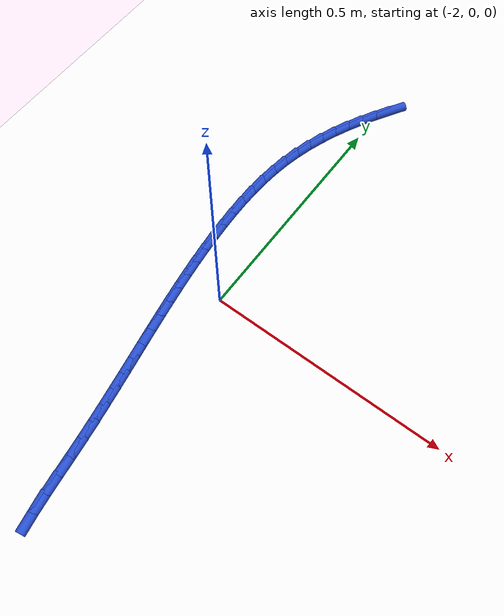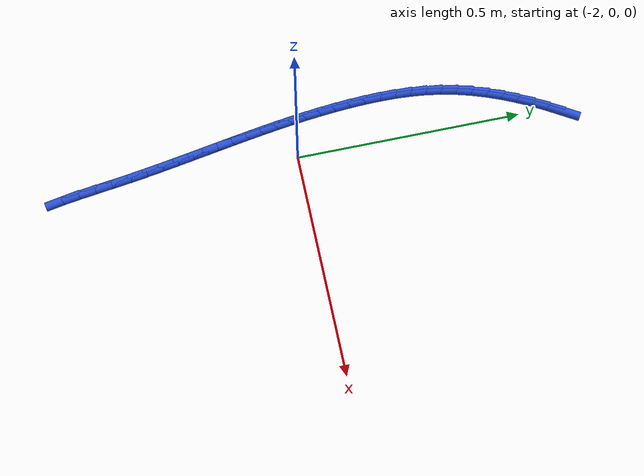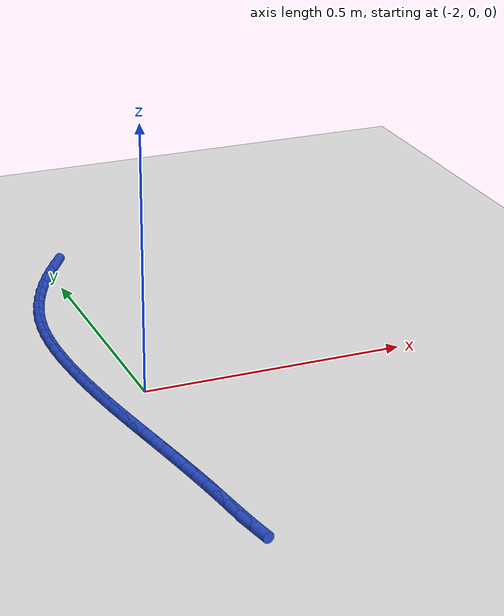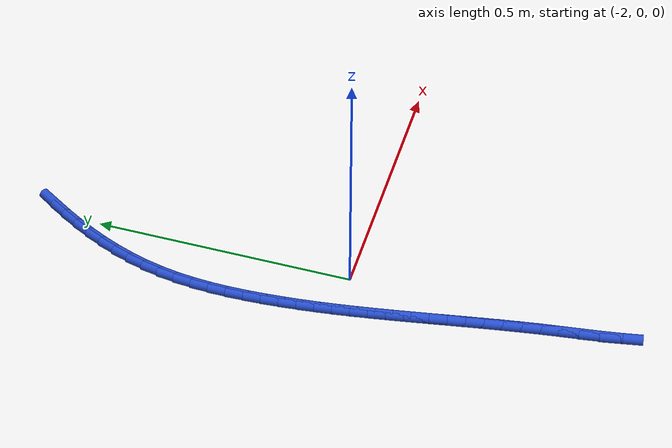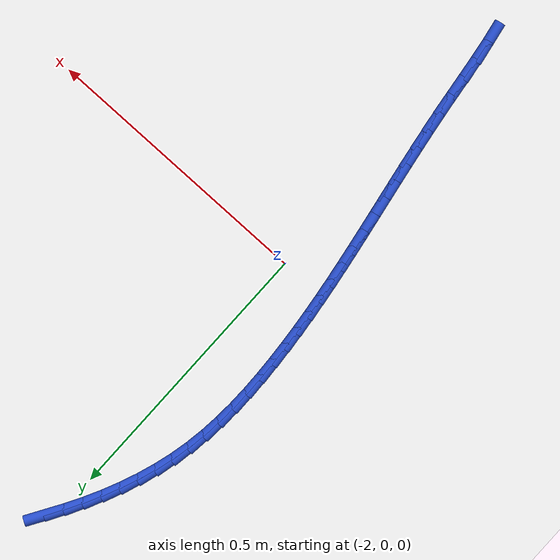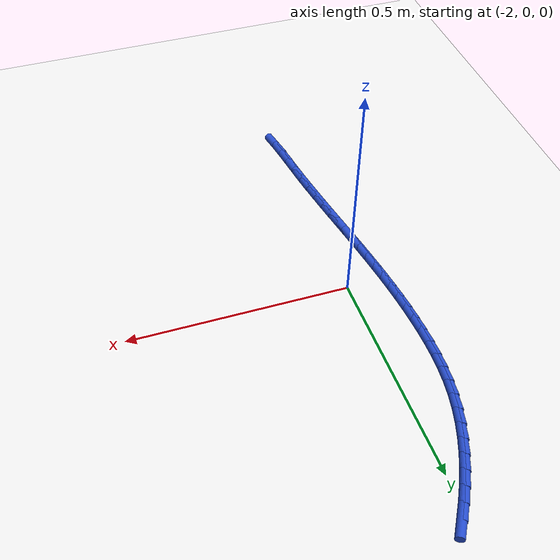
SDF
<sdf version="1.6">
 <world name="default">
  <model name="ground_plane">
   <static>1</static>
   <link name="link">
    <collision name="collision">
     <geometry><plane><normal>0 0 1</normal><size>100 100</size></plane></geometry>
     <surface><friction><ode><mu>100</mu><mu2>50</mu2></ode></friction></surface>
    </collision>
    <visual name="visual">
     <cast_shadows>0</cast_shadows>
     <geometry><plane><normal>0 0 1</normal><size>100 100</size></plane></geometry>
     <material>
      <script><uri>file://media/materials/scripts/gazebo.material</uri><name>Gazebo/WhiteGlow</name></script>
     </material>
    </visual>
   </link>
  </model>
  <model name="line">
   <link name="link_83">
    <pose>-1.983853135962166 0.5947772498989344 0.01 0 1.57 1.0234934321866094</pose>
    <collision name="collision">
     <geometry><cylinder><radius>0.01</radius><length>0.08</length></cylinder></geometry>
    </collision>
    <visual name="visual">
     <material>
      <script><name>Gazebo/Blue</name><uri>file://media/materials/scripts/gazebo.material</uri></script>
     </material>
     <geometry><cylinder><radius>0.01</radius><length>0.08</length></cylinder></geometry>
    </visual>
   </link>
   <link name="link_84">
    <pose>-2.0019983518716864 0.5650017258830304 0.01 0 1.57 1.0599484746433958</pose>
    <collision name="collision">
     <geometry><cylinder><radius>0.01</radius><length>0.08</length></cylinder></geometry>
    </collision>
    <visual name="visual">
     <material>
      <script><name>Gazebo/Blue</name><uri>file://media/materials/scripts/gazebo.material</uri></script>
     </material>
     <geometry><cylinder><radius>0.01</radius><length>0.08</length></cylinder></geometry>
    </visual>
   </link>
   <link name="link_85">
    <pose>-2.0189564164764886 0.5347449899756505 0.01 0 1.57 1.0997635262144745</pose>
    <collision name="collision">
     <geometry><cylinder><radius>0.01</radius><length>0.08</length></cylinder></geometry>
    </collision>
    <visual name="visual">
     <material>
      <script><name>Gazebo/Blue</name><uri>file://media/materials/scripts/gazebo.material</uri></script>
     </material>
     <geometry><cylinder><radius>0.01</radius><length>0.08</length></cylinder></geometry>
    </visual>
   </link>
   <link name="link_86">
    <pose>-2.0346126172049326 0.5040023041669577 0.01 0 1.57 1.1430380776419955</pose>
    <collision name="collision">
     <geometry><cylinder><radius>0.01</radius><length>0.08</length></cylinder></geometry>
    </collision>
    <visual name="visual">
     <material>
      <script><name>Gazebo/Blue</name><uri>file://media/materials/scripts/gazebo.material</uri></script>
     </material>
     <geometry><cylinder><radius>0.01</radius><length>0.08</length></cylinder></geometry>
    </visual>
   </link>
   <link name="link_87">
    <pose>-2.048852241485381 0.472768930447115 0.01 0 1.57 1.189833159988461</pose>
    <collision name="collision">
     <geometry><cylinder><radius>0.01</radius><length>0.08</length></cylinder></geometry>
    </collision>
    <visual name="visual">
     <material>
      <script><name>Gazebo/Blue</name><uri>file://media/materials/scripts/gazebo.material</uri></script>
     </material>
     <geometry><cylinder><radius>0.01</radius><length>0.08</length></cylinder></geometry>
    </visual>
   </link>
   <link name="link_88">
    <pose>-2.0615605767461944 0.4410401308062845 0.01 0 1.57 1.2401546439718218</pose>
    <collision name="collision">
     <geometry><cylinder><radius>0.01</radius><length>0.08</length></cylinder></geometry>
    </collision>
    <visual name="visual">
     <material>
      <script><name>Gazebo/Blue</name><uri>file://media/materials/scripts/gazebo.material</uri></script>
     </material>
     <geometry><cylinder><radius>0.01</radius><length>0.08</length></cylinder></geometry>
    </visual>
   </link>
   <link name="link_89">
    <pose>-2.0726229104157334 0.4088111672346294 0.01 0 1.57 1.293935247769886</pose>
    <collision name="collision">
     <geometry><cylinder><radius>0.01</radius><length>0.08</length></cylinder></geometry>
    </collision>
    <visual name="visual">
     <material>
      <script><name>Gazebo/Blue</name><uri>file://media/materials/scripts/gazebo.material</uri></script>
     </material>
     <geometry><cylinder><radius>0.01</radius><length>0.08</length></cylinder></geometry>
    </visual>
   </link>
   <link name="link_90">
    <pose>-2.0819245299223605 0.37607730172231196 0.01 0 1.57 1.3510169506875442</pose>
    <collision name="collision">
     <geometry><cylinder><radius>0.01</radius><length>0.08</length></cylinder></geometry>
    </collision>
    <visual name="visual">
     <material>
      <script><name>Gazebo/Blue</name><uri>file://media/materials/scripts/gazebo.material</uri></script>
     </material>
     <geometry><cylinder><radius>0.01</radius><length>0.08</length></cylinder></geometry>
    </visual>
   </link>
   <link name="link_91">
    <pose>-2.089350722694437 0.3428337962594952 0.01 0 1.57 1.410316927013608</pose>
    <collision name="collision">
     <geometry><cylinder><radius>0.01</radius><length>0.08</length></cylinder></geometry>
    </collision>
    <visual name="visual">
     <material>
      <script><name>Gazebo/Blue</name><uri>file://media/materials/scripts/gazebo.material</uri></script>
     </material>
     <geometry><cylinder><radius>0.01</radius><length>0.08</length></cylinder></geometry>
    </visual>
   </link>
   <link name="link_92">
    <pose>-2.094813194850492 0.30908804065689227 0.01 0 1.57 1.4652922329402984</pose>
    <collision name="collision">
     <geometry><cylinder><radius>0.01</radius><length>0.08</length></cylinder></geometry>
    </collision>
    <visual name="visual">
     <material>
      <script><name>Gazebo/Blue</name><uri>file://media/materials/scripts/gazebo.material</uri></script>
     </material>
     <geometry><cylinder><radius>0.01</radius><length>0.08</length></cylinder></geometry>
    </visual>
   </link>
   <link name="link_93">
    <pose>-2.098429191794366 0.2749417800302062 0.01 0 1.57 1.5132138418057528</pose>
    <collision name="collision">
     <geometry><cylinder><radius>0.01</radius><length>0.08</length></cylinder></geometry>
    </collision>
    <visual name="visual">
     <material>
      <script><name>Gazebo/Blue</name><uri>file://media/materials/scripts/gazebo.material</uri></script>
     </material>
     <geometry><cylinder><radius>0.01</radius><length>0.08</length></cylinder></geometry>
    </visual>
   </link>
   <link name="link_94">
    <pose>-2.100412268115971 0.24054097139658487 0.01 0 1.57 1.5544467027022748</pose>
    <collision name="collision">
     <geometry><cylinder><radius>0.01</radius><length>0.08</length></cylinder></geometry>
    </collision>
    <visual name="visual">
     <material>
      <script><name>Gazebo/Blue</name><uri>file://media/materials/scripts/gazebo.material</uri></script>
     </material>
     <geometry><cylinder><radius>0.01</radius><length>0.08</length></cylinder></geometry>
    </visual>
   </link>
   <link name="link_95">
    <pose>-2.100976529966285 0.2060318249739817 0.01 0 1.57 -1.5522193286052726</pose>
    <collision name="collision">
     <geometry><cylinder><radius>0.01</radius><length>0.08</length></cylinder></geometry>
    </collision>
    <visual name="visual">
     <material>
      <script><name>Gazebo/Blue</name><uri>file://media/materials/scripts/gazebo.material</uri></script>
     </material>
     <geometry><cylinder><radius>0.01</radius><length>0.08</length></cylinder></geometry>
    </visual>
   </link>
   <link name="link_96">
    <pose>-2.100336083496286 0.1715605509803508 0.01 0 1.57 -1.523261958129648</pose>
    <collision name="collision">
     <geometry><cylinder><radius>0.01</radius><length>0.08</length></cylinder></geometry>
    </collision>
    <visual name="visual">
     <material>
      <script><name>Gazebo/Blue</name><uri>file://media/materials/scripts/gazebo.material</uri></script>
     </material>
     <geometry><cylinder><radius>0.01</radius><length>0.08</length></cylinder></geometry>
    </visual>
   </link>
   <link name="link_97">
    <pose>-2.0987050348569505 0.13727335963364468 0.01 0 1.57 -1.4998742250932973</pose>
    <collision name="collision">
     <geometry><cylinder><radius>0.01</radius><length>0.08</length></cylinder></geometry>
    </collision>
    <visual name="visual">
     <material>
      <script><name>Gazebo/Blue</name><uri>file://media/materials/scripts/gazebo.material</uri></script>
     </material>
     <geometry><cylinder><radius>0.01</radius><length>0.08</length></cylinder></geometry>
    </visual>
   </link>
   <link name="link_98">
    <pose>-2.0962921235329475 0.10330842760834044 0.01 0 1.57 -1.4798815522639222</pose>
    <collision name="collision">
     <geometry><cylinder><radius>0.01</radius><length>0.08</length></cylinder></geometry>
    </collision>
    <visual name="visual">
     <material>
      <script><name>Gazebo/Blue</name><uri>file://media/materials/scripts/gazebo.material</uri></script>
     </material>
     <geometry><cylinder><radius>0.01</radius><length>0.08</length></cylinder></geometry>
    </visual>
   </link>
   <link name="link_99">
    <pose>-2.0932268336644424 0.06968529158551681 0.01 0 1.57 -1.4618320701920924</pose>
    <collision name="collision">
     <geometry><cylinder><radius>0.01</radius><length>0.08</length></cylinder></geometry>
    </collision>
    <visual name="visual">
     <material>
      <script><name>Gazebo/Blue</name><uri>file://media/materials/scripts/gazebo.material</uri></script>
     </material>
     <geometry><cylinder><radius>0.01</radius><length>0.08</length></cylinder></geometry>
    </visual>
   </link>
   <link name="link_100">
    <pose>-2.0895781690005837 0.036332953112800305 0.01 0 1.57 -1.4458412418260593</pose>
    <collision name="collision">
     <geometry><cylinder><radius>0.01</radius><length>0.08</length></cylinder></geometry>
    </collision>
    <visual name="visual">
     <material>
      <script><name>Gazebo/Blue</name><uri>file://media/materials/scripts/gazebo.material</uri></script>
     </material>
     <geometry><cylinder><radius>0.01</radius><length>0.08</length></cylinder></geometry>
    </visual>
   </link>
   <link name="link_101">
    <pose>-2.08541360786241 0.003178130273122661 0.01 0 1.57 -1.4320360263954102</pose>
    <collision name="collision">
     <geometry><cylinder><radius>0.01</radius><length>0.08</length></cylinder></geometry>
    </collision>
    <visual name="visual">
     <material>
      <script><name>Gazebo/Blue</name><uri>file://media/materials/scripts/gazebo.material</uri></script>
     </material>
     <geometry><cylinder><radius>0.01</radius><length>0.08</length></cylinder></geometry>
    </visual>
   </link>
   <link name="link_102">
    <pose>-2.0808006285709584 -0.029852458850584386 0.01 0 1.57 -1.4205136940384773</pose>
    <collision name="collision">
     <geometry><cylinder><radius>0.01</radius><length>0.08</length></cylinder></geometry>
    </collision>
    <visual name="visual">
     <material>
      <script><name>Gazebo/Blue</name><uri>file://media/materials/scripts/gazebo.material</uri></script>
     </material>
     <geometry><cylinder><radius>0.01</radius><length>0.08</length></cylinder></geometry>
    </visual>
   </link>
   <link name="link_103">
    <pose>-2.0758067094472668 -0.0628320961753891 0.01 0 1.57 -1.4113415101007676</pose>
    <collision name="collision">
     <geometry><cylinder><radius>0.01</radius><length>0.08</length></cylinder></geometry>
    </collision>
    <visual name="visual">
     <material>
      <script><name>Gazebo/Blue</name><uri>file://media/materials/scripts/gazebo.material</uri></script>
     </material>
     <geometry><cylinder><radius>0.01</radius><length>0.08</length></cylinder></geometry>
    </visual>
   </link>
   <link name="link_104">
    <pose>-2.070499328812373 -0.09583406361835965 0.01 0 1.57 -1.4045571984736342</pose>
    <collision name="collision">
     <geometry><cylinder><radius>0.01</radius><length>0.08</length></cylinder></geometry>
    </collision>
    <visual name="visual">
     <material>
      <script><name>Gazebo/Blue</name><uri>file://media/materials/scripts/gazebo.material</uri></script>
     </material>
     <geometry><cylinder><radius>0.01</radius><length>0.08</length></cylinder></geometry>
    </visual>
   </link>
   <link name="link_105">
    <pose>-2.0649459649873148 -0.12893164309656432 0.01 0 1.57 -1.4001700104559236</pose>
    <collision name="collision">
     <geometry><cylinder><radius>0.01</radius><length>0.08</length></cylinder></geometry>
    </collision>
    <visual name="visual">
     <material>
      <script><name>Gazebo/Blue</name><uri>file://media/materials/scripts/gazebo.material</uri></script>
     </material>
     <geometry><cylinder><radius>0.01</radius><length>0.08</length></cylinder></geometry>
    </visual>
   </link>
   <link name="link_106">
    <pose>-2.059214096293129 -0.16219811652707133 0.01 0 1.57 -1.3981622350778844</pose>
    <collision name="collision">
     <geometry><cylinder><radius>0.01</radius><length>0.08</length></cylinder></geometry>
    </collision>
    <visual name="visual">
     <material>
      <script><name>Gazebo/Blue</name><uri>file://media/materials/scripts/gazebo.material</uri></script>
     </material>
     <geometry><cylinder><radius>0.01</radius><length>0.08</length></cylinder></geometry>
    </visual>
   </link>
   <link name="link_107">
    <pose>-2.0533712010508554 -0.19570676582694896 0.01 0 1.57 -1.3984910126815648</pose>
    <collision name="collision">
     <geometry><cylinder><radius>0.01</radius><length>0.08</length></cylinder></geometry>
    </collision>
    <visual name="visual">
     <material>
      <script><name>Gazebo/Blue</name><uri>file://media/materials/scripts/gazebo.material</uri></script>
     </material>
     <geometry><cylinder><radius>0.01</radius><length>0.08</length></cylinder></geometry>
    </visual>
   </link>
   <link name="link_108">
    <pose>-2.04748475758153 -0.22953087291326546 0.01 0 1.57 -1.4010903478248828</pose>
    <collision name="collision">
     <geometry><cylinder><radius>0.01</radius><length>0.08</length></cylinder></geometry>
    </collision>
    <visual name="visual">
     <material>
      <script><name>Gazebo/Blue</name><uri>file://media/materials/scripts/gazebo.material</uri></script>
     </material>
     <geometry><cylinder><radius>0.01</radius><length>0.08</length></cylinder></geometry>
    </visual>
   </link>
   <link name="link_109">
    <pose>-2.0416222442061907 -0.26374371970308896 0.01 0 1.57 -1.4058732530494005</pose>
    <collision name="collision">
     <geometry><cylinder><radius>0.01</radius><length>0.08</length></cylinder></geometry>
    </collision>
    <visual name="visual">
     <material>
      <script><name>Gazebo/Blue</name><uri>file://media/materials/scripts/gazebo.material</uri></script>
     </material>
     <geometry><cylinder><radius>0.01</radius><length>0.08</length></cylinder></geometry>
    </visual>
   </link>
   <link name="link_110">
    <pose>-2.0358511392458762 -0.29841858811348787 0.01 0 1.57 -1.4127339861135626</pose>
    <collision name="collision">
     <geometry><cylinder><radius>0.01</radius><length>0.08</length></cylinder></geometry>
    </collision>
    <visual name="visual">
     <material>
      <script><name>Gazebo/Blue</name><uri>file://media/materials/scripts/gazebo.material</uri></script>
     </material>
     <geometry><cylinder><radius>0.01</radius><length>0.08</length></cylinder></geometry>
    </visual>
   </link>
   <link name="link_111">
    <pose>-2.0302389210216236 -0.3336287600615303 0.01 0 1.57 -1.421550366244152</pose>
    <collision name="collision">
     <geometry><cylinder><radius>0.01</radius><length>0.08</length></cylinder></geometry>
    </collision>
    <visual name="visual">
     <material>
      <script><name>Gazebo/Blue</name><uri>file://media/materials/scripts/gazebo.material</uri></script>
     </material>
     <geometry><cylinder><radius>0.01</radius><length>0.08</length></cylinder></geometry>
    </visual>
   </link>
   <link name="link_112">
    <pose>-2.0248530678544707 -0.3694475174642846 0.01 0 1.57 -1.4321813001321149</pose>
    <collision name="collision">
     <geometry><cylinder><radius>0.01</radius><length>0.08</length></cylinder></geometry>
    </collision>
    <visual name="visual">
     <material>
      <script><name>Gazebo/Blue</name><uri>file://media/materials/scripts/gazebo.material</uri></script>
     </material>
     <geometry><cylinder><radius>0.01</radius><length>0.08</length></cylinder></geometry>
    </visual>
   </link>
   <link name="link_113">
    <pose>-2.0197609011266353 -0.4059479687710068 0.01 0 1.57 -1.4408906124493308</pose>
    <collision name="collision">
     <geometry><cylinder><radius>0.01</radius><length>0.08</length></cylinder></geometry>
    </collision>
    <visual name="visual">
     <material>
      <script><name>Gazebo/Blue</name><uri>file://media/materials/scripts/gazebo.material</uri></script>
     </material>
     <geometry><cylinder><radius>0.01</radius><length>0.08</length></cylinder></geometry>
    </visual>
   </link>
   <link name="link_114">
    <pose>-2.0149109722796146 -0.443071943491907 0.01 0 1.57 -1.4379142513310412</pose>
    <collision name="collision">
     <geometry><cylinder><radius>0.01</radius><length>0.08</length></cylinder></geometry>
    </collision>
    <visual name="visual">
     <material>
      <script><name>Gazebo/Blue</name><uri>file://media/materials/scripts/gazebo.material</uri></script>
     </material>
     <geometry><cylinder><radius>0.01</radius><length>0.08</length></cylinder></geometry>
    </visual>
   </link>
   <link name="link_115">
    <pose>-2.0099218089747004 -0.4803964888407438 0.01 0 1.57 -1.4216203398879315</pose>
    <collision name="collision">
     <geometry><cylinder><radius>0.01</radius><length>0.08</length></cylinder></geometry>
    </collision>
    <visual name="visual">
     <material>
      <script><name>Gazebo/Blue</name><uri>file://media/materials/scripts/gazebo.material</uri></script>
     </material>
     <geometry><cylinder><radius>0.01</radius><length>0.08</length></cylinder></geometry>
    </visual>
   </link>
   <link name="link_116">
    <pose>-2.0043550783264696 -0.5174358028608487 0.01 0 1.57 -1.3912525012454597</pose>
    <collision name="collision">
     <geometry><cylinder><radius>0.01</radius><length>0.08</length></cylinder></geometry>
    </collision>
    <visual name="visual">
     <material>
      <script><name>Gazebo/Blue</name><uri>file://media/materials/scripts/gazebo.material</uri></script>
     </material>
     <geometry><cylinder><radius>0.01</radius><length>0.08</length></cylinder></geometry>
    </visual>
   </link>
  </model>
 </world>
</sdf>
